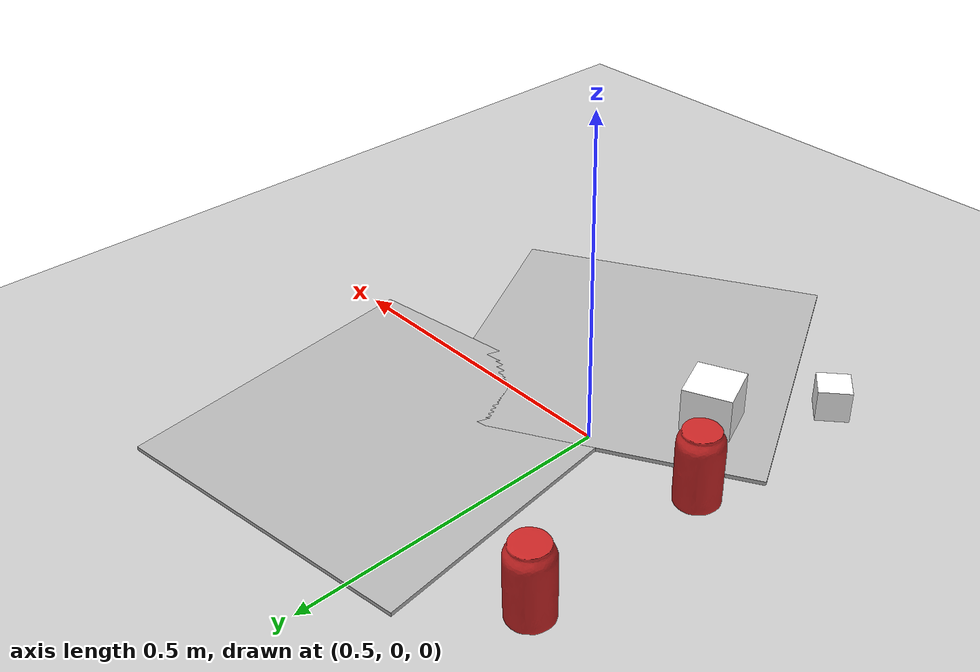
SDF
<?xml version="1.0" ?>
<sdf version="1.6">
  <world name="default">

    <light type="directional" name="light">
      <light_on>true</light_on>
      <pose>0 0 1 0 0 0</pose>
      <diffuse>0.5 0.5 0.5 1</diffuse>
      <specular>.1 .1 .1 1</specular>
      <cast_shadows>false</cast_shadows>
    </light>

    <include>
      <uri>model://ground_plane</uri>
    </include>

    <include>
      <uri>model://sun</uri>
    </include>

    <include>
      <uri>model://coke_can</uri>
      <name>can2</name>
      <pose>0.3 0.3 0.0 0 0 0</pose>
    </include>

    <include>
      <uri>model://coke_can</uri>
      <pose>0.3 0.0 0.0 0 0 0</pose>
      <name>can1</name>
    </include>

    <include>
      <name>cube_small</name>
      <uri>model://wood_cube_5cm</uri>
      <pose>0.3 -0.3 0.0 0 0 0.7</pose>
    </include>

    <include>
      <name>cube_large</name>
      <uri>model://wood_cube_7_5cm</uri>
      <pose>0.4 -0.15 0.0 0 0 0.4</pose>
    </include>

    <include>
      <name>brick1</name>
      <uri>model://rectangle1</uri>
      <pose>0.6 -0.2 0.0 0 0 0.5</pose>
    </include>

    <include>
      <name>brick2</name>
      <uri>model://rectangle1</uri>
      <pose>0.7 0.2 0.0 0 0 1.7</pose>
    </include>

    <physics type="ode">
      <real_time_update_rate>1000.0</real_time_update_rate>
    </physics>

    <gravity>
      0.0 0.0 -9.81
    </gravity>

    <gui fullscreen='0'>
    </gui>

  </world>
</sdf>

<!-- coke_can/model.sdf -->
<sdf version="1.5">
  <model name="coke_can">
    <link name="link">
      <inertial>
        <pose>0 0 0.06 0 0 0</pose>
        <mass>0.390</mass>
        <inertia>
          <ixx>0.00055575</ixx>
          <ixy>0</ixy>
          <ixz>0</ixz>
          <iyy>0.00055575</iyy>
          <iyz>0</iyz>
          <izz>0.0001755</izz>
        </inertia>
      </inertial>
      <collision name="collision">
        <pose>0.003937 0.0047244 -0.18 0 0 0</pose>
        <geometry>
          <mesh>
            <uri>model://coke_can/meshes/coke_can.dae</uri>
          </mesh>
        </geometry>
        <surface>
          <friction>
            <ode>
              <mu>1.0</mu>
              <mu2>1.0</mu2>
            </ode>
          </friction>
          <contact>
            <ode>
              <kp>10000000.0</kp>
              <kd>1.0</kd>
              <min_depth>0.001</min_depth>
              <max_vel>0.1</max_vel>
            </ode>
          </contact>
        </surface>
      </collision>
      <visual name="visual">
        <pose>0.003937 0.0047244 -0.18 0 0 0</pose>
        <geometry>
          <mesh>
            <uri>model://coke_can/meshes/coke_can.dae</uri>
          </mesh>
        </geometry>
        <material>
          <script>
            <uri>file://media/materials/scripts/gazebo.material</uri>
            <name>Gazebo/Red</name>
          </script>
        </material>
      </visual>
    </link>
  </model>
</sdf>

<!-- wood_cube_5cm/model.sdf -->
<sdf version="1.5">
  <model name="wood_cube_5cm">
    <link name="link">
      <pose>0 0 0.025 0 0 0</pose>
      <inertial>
        <mass>0.0565</mass>
        <inertia>
          <ixx>2.3541666666666672e-05</ixx>
          <ixy>0</ixy>
          <ixz>0</ixz>
          <iyy>2.3541666666666672e-05</iyy>
          <iyz>0</iyz>
          <izz>2.3541666666666672e-05</izz>
        </inertia>
      </inertial>

      <collision name="collision">
        <geometry>
          <box>
            <size>0.05 0.05 0.05</size>
          </box>
        </geometry>
        <surface>
          <contact>
            <!-- Red Pine coefficients for longitudinal axis of the wood
                 according to:
                 http://www.fpl.fs.fed.us/documnts/fplgtr/fplgtr113/ch04.pdf -->
            <poissons_ratio>0.347</poissons_ratio>
            <elastic_modulus>8.8e+09</elastic_modulus>
            <ode>
              <kp>100000</kp>
              <kd>1</kd>
              <max_vel>1.0</max_vel>
              <min_depth>0.001</min_depth>
            </ode>
          </contact>
          <friction>
            <torsional>
              <coefficient>1.0</coefficient>
              <use_patch_radius>0</use_patch_radius>
              <surface_radius>0.05</surface_radius>
            </torsional>
          </friction>
        </surface>
      </collision>

      <visual name="visual">
        <geometry>
          <box>
            <size>0.05 0.05 0.05</size>
          </box>
        </geometry>
        <material><diffuse>1 1 1 1</diffuse><specular>0.1 0.1 0.1 1</specular></material>
      </visual>

    </link>
  </model>
</sdf>

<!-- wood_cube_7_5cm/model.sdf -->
<sdf version="1.5">
  <model name="wood_cube_7_5cm">
    <link name="link">
      <pose>0 0 0.0375 0 0 0</pose>
      <inertial>
        <mass>0.2249</mass>
        <inertia>
          <ixx>0.00021084374999999999</ixx>
          <ixy>0</ixy>
          <ixz>0</ixz>
          <iyy>0.00021084374999999999</iyy>
          <iyz>0</iyz>
          <izz>0.00021084374999999999</izz>
        </inertia>
      </inertial>

      <collision name="collision">
        <geometry>
          <box>
            <size>0.075 0.075 0.075</size>
          </box>
        </geometry>
        <surface>
          <contact>
            <!-- Red Pine coefficients for longitudinal axis of the wood
                 according to:
                 http://www.fpl.fs.fed.us/documnts/fplgtr/fplgtr113/ch04.pdf -->
            <poissons_ratio>0.347</poissons_ratio>
            <elastic_modulus>8.8e+09</elastic_modulus>
            <ode>
              <kp>100000</kp>
              <kd>100</kd>
              <max_vel>100.0</max_vel>
              <min_depth>0.001</min_depth>
            </ode>
          </contact>
          <friction>
            <torsional>
              <coefficient>1.0</coefficient>
              <use_patch_radius>0</use_patch_radius>
              <surface_radius>0.01</surface_radius>
            </torsional>
          </friction>
        </surface>
      </collision>

      <visual name="visual">
        <geometry>
          <box>
            <size>0.075 0.075 0.075</size>
          </box>
        </geometry>
        <material><diffuse>1 1 1 1</diffuse><specular>0.1 0.1 0.1 1</specular></material>
      </visual>

    </link>
  </model>
</sdf>

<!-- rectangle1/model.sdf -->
<sdf version="1.6">
  <model name="rectangle1">
      <pose>0 0 0 0 0 0</pose>
      <link name="link">
        <collision name="collision">
          <geometry>
            <box>
              <size>0.5 0.5 0.01</size>
            </box>
          </geometry>
        </collision>
        <visual name="visual">
          <geometry>
            <box>
              <size>0.5 0.5 0.01</size>
            </box>
          </geometry>
          <material>
            <script>
                <uri>model://rectangle1/materials/scripts</uri>
                <uri>model://rectangle1/materials/textures</uri>
                <name>rectangle1</name>
              </script>
          </material>
        </visual>
      </link>

    </model>
</sdf>
